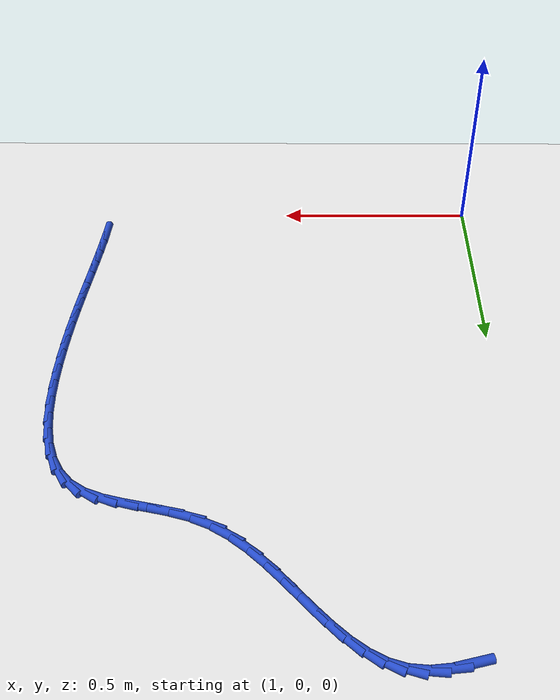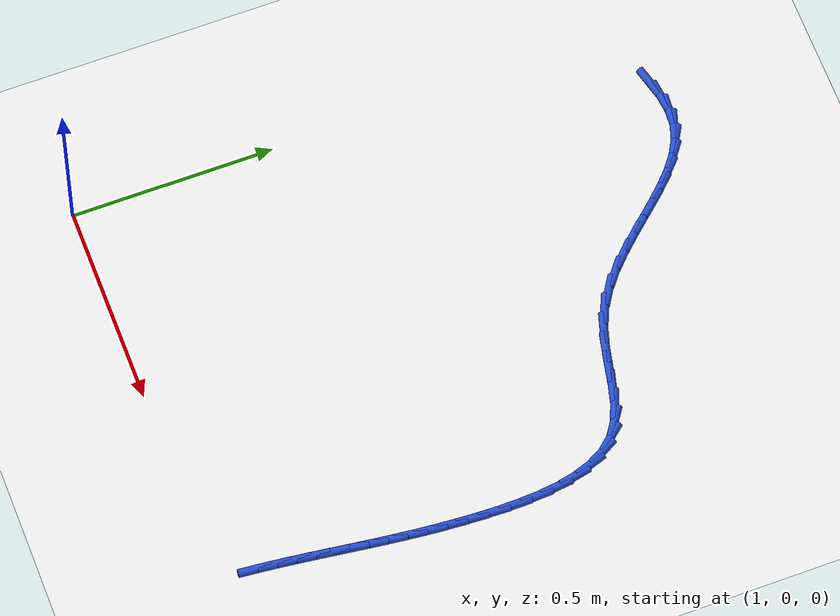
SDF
<sdf version="1.6">
 <world name="default">
  <model name="ground_plane">
   <static>1</static>
   <link name="link">
    <collision name="collision">
     <geometry><plane><normal>0 0 1</normal><size>100 100</size></plane></geometry>
     <surface><friction><ode><mu>100</mu><mu2>50</mu2></ode></friction></surface>
    </collision>
    <visual name="visual">
     <cast_shadows>0</cast_shadows>
     <geometry><plane><normal>0 0 1</normal><size>100 100</size></plane></geometry>
     <material>
      <script><uri>file://media/materials/scripts/gazebo.material</uri><name>Gazebo/WhiteGlow</name></script>
     </material>
    </visual>
   </link>
  </model>
  <model name="line">
   <link name="link_40">
    <pose>1.1506945203903407 1.3999088238449218 0.01 0 1.57 0.248001118957641</pose>
    <collision name="collision">
     <geometry><cylinder><radius>0.01</radius><length>0.08</length></cylinder></geometry>
    </collision>
    <visual name="visual">
     <material>
      <script><name>Gazebo/Blue</name><uri>file://media/materials/scripts/gazebo.material</uri></script>
     </material>
     <geometry><cylinder><radius>0.01</radius><length>0.08</length></cylinder></geometry>
    </visual>
   </link>
   <link name="link_41">
    <pose>1.1947018114395063 1.4110520771290245 0.01 0 1.57 0.10412634017692955</pose>
    <collision name="collision">
     <geometry><cylinder><radius>0.01</radius><length>0.08</length></cylinder></geometry>
    </collision>
    <visual name="visual">
     <material>
      <script><name>Gazebo/Blue</name><uri>file://media/materials/scripts/gazebo.material</uri></script>
     </material>
     <geometry><cylinder><radius>0.01</radius><length>0.08</length></cylinder></geometry>
    </visual>
   </link>
   <link name="link_42">
    <pose>1.2371419881285706 1.415487258182339 0.01 0 1.57 -0.08556642752042813</pose>
    <collision name="collision">
     <geometry><cylinder><radius>0.01</radius><length>0.08</length></cylinder></geometry>
    </collision>
    <visual name="visual">
     <material>
      <script><name>Gazebo/Blue</name><uri>file://media/materials/scripts/gazebo.material</uri></script>
     </material>
     <geometry><cylinder><radius>0.01</radius><length>0.08</length></cylinder></geometry>
    </visual>
   </link>
   <link name="link_43">
    <pose>1.2775255287657954 1.412023324889839 0.01 0 1.57 -0.31185970319608747</pose>
    <collision name="collision">
     <geometry><cylinder><radius>0.01</radius><length>0.08</length></cylinder></geometry>
    </collision>
    <visual name="visual">
     <material>
      <script><name>Gazebo/Blue</name><uri>file://media/materials/scripts/gazebo.material</uri></script>
     </material>
     <geometry><cylinder><radius>0.01</radius><length>0.08</length></cylinder></geometry>
    </visual>
   </link>
   <link name="link_44">
    <pose>1.3154876858018383 1.399785112929304 0.01 0 1.57 -0.5120720492279744</pose>
    <collision name="collision">
     <geometry><cylinder><radius>0.01</radius><length>0.08</length></cylinder></geometry>
    </collision>
    <visual name="visual">
     <material>
      <script><name>Gazebo/Blue</name><uri>file://media/materials/scripts/gazebo.material</uri></script>
     </material>
     <geometry><cylinder><radius>0.01</radius><length>0.08</length></cylinder></geometry>
    </visual>
   </link>
   <link name="link_45">
    <pose>1.351347633939852 1.3796288732174433 0.01 0 1.57 -0.6599936482553092</pose>
    <collision name="collision">
     <geometry><cylinder><radius>0.01</radius><length>0.08</length></cylinder></geometry>
    </collision>
    <visual name="visual">
     <material>
      <script><name>Gazebo/Blue</name><uri>file://media/materials/scripts/gazebo.material</uri></script>
     </material>
     <geometry><cylinder><radius>0.01</radius><length>0.08</length></cylinder></geometry>
    </visual>
   </link>
   <link name="link_46">
    <pose>1.3856576721279887 1.3530010332135192 0.01 0 1.57 -0.7598498416399019</pose>
    <collision name="collision">
     <geometry><cylinder><radius>0.01</radius><length>0.08</length></cylinder></geometry>
    </collision>
    <visual name="visual">
     <material>
      <script><name>Gazebo/Blue</name><uri>file://media/materials/scripts/gazebo.material</uri></script>
     </material>
     <geometry><cylinder><radius>0.01</radius><length>0.08</length></cylinder></geometry>
    </visual>
   </link>
   <link name="link_47">
    <pose>1.4189702967042257 1.3213485200882036 0.01 0 1.57 -0.82007768028849</pose>
    <collision name="collision">
     <geometry><cylinder><radius>0.01</radius><length>0.08</length></cylinder></geometry>
    </collision>
    <visual name="visual">
     <material>
      <script><name>Gazebo/Blue</name><uri>file://media/materials/scripts/gazebo.material</uri></script>
     </material>
     <geometry><cylinder><radius>0.01</radius><length>0.08</length></cylinder></geometry>
    </visual>
   </link>
   <link name="link_48">
    <pose>1.451838004006542 1.2861182610121689 0.01 0 1.57 -0.8476720759975318</pose>
    <collision name="collision">
     <geometry><cylinder><radius>0.01</radius><length>0.08</length></cylinder></geometry>
    </collision>
    <visual name="visual">
     <material>
      <script><name>Gazebo/Blue</name><uri>file://media/materials/scripts/gazebo.material</uri></script>
     </material>
     <geometry><cylinder><radius>0.01</radius><length>0.08</length></cylinder></geometry>
    </visual>
   </link>
   <link name="link_49">
    <pose>1.4848132903729134 1.248757183156087 0.01 0 1.57 -0.8468384163667483</pose>
    <collision name="collision">
     <geometry><cylinder><radius>0.01</radius><length>0.08</length></cylinder></geometry>
    </collision>
    <visual name="visual">
     <material>
      <script><name>Gazebo/Blue</name><uri>file://media/materials/scripts/gazebo.material</uri></script>
     </material>
     <geometry><cylinder><radius>0.01</radius><length>0.08</length></cylinder></geometry>
    </visual>
   </link>
   <link name="link_50">
    <pose>1.518448652141319 1.2107122136906296 0.01 0 1.57 -0.8191300590002366</pose>
    <collision name="collision">
     <geometry><cylinder><radius>0.01</radius><length>0.08</length></cylinder></geometry>
    </collision>
    <visual name="visual">
     <material>
      <script><name>Gazebo/Blue</name><uri>file://media/materials/scripts/gazebo.material</uri></script>
     </material>
     <geometry><cylinder><radius>0.01</radius><length>0.08</length></cylinder></geometry>
    </visual>
   </link>
   <link name="link_51">
    <pose>1.5532965856497365 1.1734302797864689 0.01 0 1.57 -0.7639042151658584</pose>
    <collision name="collision">
     <geometry><cylinder><radius>0.01</radius><length>0.08</length></cylinder></geometry>
    </collision>
    <visual name="visual">
     <material>
      <script><name>Gazebo/Blue</name><uri>file://media/materials/scripts/gazebo.material</uri></script>
     </material>
     <geometry><cylinder><radius>0.01</radius><length>0.08</length></cylinder></geometry>
    </visual>
   </link>
   <link name="link_52">
    <pose>1.5899095872361433 1.1383583086142774 0.01 0 1.57 -0.6789653528277156</pose>
    <collision name="collision">
     <geometry><cylinder><radius>0.01</radius><length>0.08</length></cylinder></geometry>
    </collision>
    <visual name="visual">
     <material>
      <script><name>Gazebo/Blue</name><uri>file://media/materials/scripts/gazebo.material</uri></script>
     </material>
     <geometry><cylinder><radius>0.01</radius><length>0.08</length></cylinder></geometry>
    </visual>
   </link>
   <link name="link_53">
    <pose>1.6288401532385177 1.1069432273447264 0.01 0 1.57 -0.5617905130435357</pose>
    <collision name="collision">
     <geometry><cylinder><radius>0.01</radius><length>0.08</length></cylinder></geometry>
    </collision>
    <visual name="visual">
     <material>
      <script><name>Gazebo/Blue</name><uri>file://media/materials/scripts/gazebo.material</uri></script>
     </material>
     <geometry><cylinder><radius>0.01</radius><length>0.08</length></cylinder></geometry>
    </visual>
   </link>
   <link name="link_54">
    <pose>1.6706407799948368 1.0806319631484886 0.01 0 1.57 -0.41496245748131144</pose>
    <collision name="collision">
     <geometry><cylinder><radius>0.01</radius><length>0.08</length></cylinder></geometry>
    </collision>
    <visual name="visual">
     <material>
      <script><name>Gazebo/Blue</name><uri>file://media/materials/scripts/gazebo.material</uri></script>
     </material>
     <geometry><cylinder><radius>0.01</radius><length>0.08</length></cylinder></geometry>
    </visual>
   </link>
   <link name="link_55">
    <pose>1.7157879506794882 1.0607426528257258 0.01 0 1.57 -0.2897167532969112</pose>
    <collision name="collision">
     <geometry><cylinder><radius>0.01</radius><length>0.08</length></cylinder></geometry>
    </collision>
    <visual name="visual">
     <material>
      <script><name>Gazebo/Blue</name><uri>file://media/materials/scripts/gazebo.material</uri></script>
     </material>
     <geometry><cylinder><radius>0.01</radius><length>0.08</length></cylinder></geometry>
    </visual>
   </link>
   <link name="link_56">
    <pose>1.7635289860777958 1.046510842845819 0.01 0 1.57 -0.2231429391512614</pose>
    <collision name="collision">
     <geometry><cylinder><radius>0.01</radius><length>0.08</length></cylinder></geometry>
    </collision>
    <visual name="visual">
     <material>
      <script><name>Gazebo/Blue</name><uri>file://media/materials/scripts/gazebo.material</uri></script>
     </material>
     <geometry><cylinder><radius>0.01</radius><length>0.08</length></cylinder></geometry>
    </visual>
   </link>
   <link name="link_57">
    <pose>1.8121157415735316 1.0354854460499685 0.01 0 1.57 -0.2132315533554481</pose>
    <collision name="collision">
     <geometry><cylinder><radius>0.01</radius><length>0.08</length></cylinder></geometry>
    </collision>
    <visual name="visual">
     <material>
      <script><name>Gazebo/Blue</name><uri>file://media/materials/scripts/gazebo.material</uri></script>
     </material>
     <geometry><cylinder><radius>0.01</radius><length>0.08</length></cylinder></geometry>
    </visual>
   </link>
   <link name="link_58">
    <pose>1.859771451305368 1.0251668818265693 0.01 0 1.57 -0.26320123160877457</pose>
    <collision name="collision">
     <geometry><cylinder><radius>0.01</radius><length>0.08</length></cylinder></geometry>
    </collision>
    <visual name="visual">
     <material>
      <script><name>Gazebo/Blue</name><uri>file://media/materials/scripts/gazebo.material</uri></script>
     </material>
     <geometry><cylinder><radius>0.01</radius><length>0.08</length></cylinder></geometry>
    </visual>
   </link>
   <link name="link_59">
    <pose>1.9047193494119778 1.0130555695640182 0.01 0 1.57 -0.38514884669716004</pose>
    <collision name="collision">
     <geometry><cylinder><radius>0.01</radius><length>0.08</length></cylinder></geometry>
    </collision>
    <visual name="visual">
     <material>
      <script><name>Gazebo/Blue</name><uri>file://media/materials/scripts/gazebo.material</uri></script>
     </material>
     <geometry><cylinder><radius>0.01</radius><length>0.08</length></cylinder></geometry>
    </visual>
   </link>
   <link name="link_60">
    <pose>1.9451826700320336 0.996651928650711 0.01 0 1.57 -0.5956292241043596</pose>
    <collision name="collision">
     <geometry><cylinder><radius>0.01</radius><length>0.08</length></cylinder></geometry>
    </collision>
    <visual name="visual">
     <material>
      <script><name>Gazebo/Blue</name><uri>file://media/materials/scripts/gazebo.material</uri></script>
     </material>
     <geometry><cylinder><radius>0.01</radius><length>0.08</length></cylinder></geometry>
    </visual>
   </link>
   <link name="link_61">
    <pose>1.979391846290921 0.9734670217352731 0.01 0 1.57 -0.8578289998630426</pose>
    <collision name="collision">
     <geometry><cylinder><radius>0.01</radius><length>0.08</length></cylinder></geometry>
    </collision>
    <visual name="visual">
     <material>
      <script><name>Gazebo/Blue</name><uri>file://media/materials/scripts/gazebo.material</uri></script>
     </material>
     <geometry><cylinder><radius>0.01</radius><length>0.08</length></cylinder></geometry>
    </visual>
   </link>
   <link name="link_62">
    <pose>2.0064017972001515 0.9422308632703268 0.01 0 1.57 -1.0797163538975796</pose>
    <collision name="collision">
     <geometry><cylinder><radius>0.01</radius><length>0.08</length></cylinder></geometry>
    </collision>
    <visual name="visual">
     <material>
      <script><name>Gazebo/Blue</name><uri>file://media/materials/scripts/gazebo.material</uri></script>
     </material>
     <geometry><cylinder><radius>0.01</radius><length>0.08</length></cylinder></geometry>
    </visual>
   </link>
   <link name="link_63">
    <pose>2.026844249015705 0.9040046804891455 0.01 0 1.57 -1.2479436493516618</pose>
    <collision name="collision">
     <geometry><cylinder><radius>0.01</radius><length>0.08</length></cylinder></geometry>
    </collision>
    <visual name="visual">
     <material>
      <script><name>Gazebo/Blue</name><uri>file://media/materials/scripts/gazebo.material</uri></script>
     </material>
     <geometry><cylinder><radius>0.01</radius><length>0.08</length></cylinder></geometry>
    </visual>
   </link>
   <link name="link_64">
    <pose>2.041528724476406 0.8601125618178415 0.01 0 1.57 -1.3716226393590898</pose>
    <collision name="collision">
     <geometry><cylinder><radius>0.01</radius><length>0.08</length></cylinder></geometry>
    </collision>
    <visual name="visual">
     <material>
      <script><name>Gazebo/Blue</name><uri>file://media/materials/scripts/gazebo.material</uri></script>
     </material>
     <geometry><cylinder><radius>0.01</radius><length>0.08</length></cylinder></geometry>
    </visual>
   </link>
   <link name="link_65">
    <pose>2.0512647463210762 0.8118785956825244 0.01 0 1.57 -1.4620195419599558</pose>
    <collision name="collision">
     <geometry><cylinder><radius>0.01</radius><length>0.08</length></cylinder></geometry>
    </collision>
    <visual name="visual">
     <material>
      <script><name>Gazebo/Blue</name><uri>file://media/materials/scripts/gazebo.material</uri></script>
     </material>
     <geometry><cylinder><radius>0.01</radius><length>0.08</length></cylinder></geometry>
    </visual>
   </link>
   <link name="link_66">
    <pose>2.0568618372885377 0.7606268705093041 0.01 0 1.57 -1.5279918928683596</pose>
    <collision name="collision">
     <geometry><cylinder><radius>0.01</radius><length>0.08</length></cylinder></geometry>
    </collision>
    <visual name="visual">
     <material>
      <script><name>Gazebo/Blue</name><uri>file://media/materials/scripts/gazebo.material</uri></script>
     </material>
     <geometry><cylinder><radius>0.01</radius><length>0.08</length></cylinder></geometry>
    </visual>
   </link>
   <link name="link_67">
    <pose>2.059129520117613 0.7076814747242919 0.01 0 1.57 1.5660659358439957</pose>
    <collision name="collision">
     <geometry><cylinder><radius>0.01</radius><length>0.08</length></cylinder></geometry>
    </collision>
    <visual name="visual">
     <material>
      <script><name>Gazebo/Blue</name><uri>file://media/materials/scripts/gazebo.material</uri></script>
     </material>
     <geometry><cylinder><radius>0.01</radius><length>0.08</length></cylinder></geometry>
    </visual>
   </link>
   <link name="link_68">
    <pose>2.058877317547125 0.6543664967535976 0.01 0 1.57 1.5333139351230123</pose>
    <collision name="collision">
     <geometry><cylinder><radius>0.01</radius><length>0.08</length></cylinder></geometry>
    </collision>
    <visual name="visual">
     <material>
      <script><name>Gazebo/Blue</name><uri>file://media/materials/scripts/gazebo.material</uri></script>
     </material>
     <geometry><cylinder><radius>0.01</radius><length>0.08</length></cylinder></geometry>
    </visual>
   </link>
   <link name="link_69">
    <pose>2.0569137056324323 0.6020034494101201 0.01 0 1.57 1.5104250547485023</pose>
    <collision name="collision">
     <geometry><cylinder><radius>0.01</radius><length>0.08</length></cylinder></geometry>
    </collision>
    <visual name="visual">
     <material>
      <script><name>Gazebo/Blue</name><uri>file://media/materials/scripts/gazebo.material</uri></script>
     </material>
     <geometry><cylinder><radius>0.01</radius><length>0.08</length></cylinder></geometry>
    </visual>
   </link>
   <link name="link_70">
    <pose>2.05385790354605 0.5514481340044691 0.01 0 1.57 1.4904682083308844</pose>
    <collision name="collision">
     <geometry><cylinder><radius>0.01</radius><length>0.08</length></cylinder></geometry>
    </collision>
    <visual name="visual">
     <material>
      <script><name>Gazebo/Blue</name><uri>file://media/materials/scripts/gazebo.material</uri></script>
     </material>
     <geometry><cylinder><radius>0.01</radius><length>0.08</length></cylinder></geometry>
    </visual>
   </link>
   <link name="link_71">
    <pose>2.049921876930879 0.5025542078288321 0.01 0 1.57 1.4730819632938281</pose>
    <collision name="collision">
     <geometry><cylinder><radius>0.01</radius><length>0.08</length></cylinder></geometry>
    </collision>
    <visual name="visual">
     <material>
      <script><name>Gazebo/Blue</name><uri>file://media/materials/scripts/gazebo.material</uri></script>
     </material>
     <geometry><cylinder><radius>0.01</radius><length>0.08</length></cylinder></geometry>
    </visual>
   </link>
   <link name="link_72">
    <pose>2.0452647400786237 0.4550452748753876 0.01 0 1.57 1.4587866242409435</pose>
    <collision name="collision">
     <geometry><cylinder><radius>0.01</radius><length>0.08</length></cylinder></geometry>
    </collision>
    <visual name="visual">
     <material>
      <script><name>Gazebo/Blue</name><uri>file://media/materials/scripts/gazebo.material</uri></script>
     </material>
     <geometry><cylinder><radius>0.01</radius><length>0.08</length></cylinder></geometry>
    </visual>
   </link>
   <link name="link_73">
    <pose>2.0400456072809874 0.4086449391363123 0.01 0 1.57 1.4480406597738205</pose>
    <collision name="collision">
     <geometry><cylinder><radius>0.01</radius><length>0.08</length></cylinder></geometry>
    </collision>
    <visual name="visual">
     <material>
      <script><name>Gazebo/Blue</name><uri>file://media/materials/scripts/gazebo.material</uri></script>
     </material>
     <geometry><cylinder><radius>0.01</radius><length>0.08</length></cylinder></geometry>
    </visual>
   </link>
   <link name="link_74">
    <pose>2.0344235928296768 0.36307680460378466 0.01 0 1.57 1.4412115677209945</pose>
    <collision name="collision">
     <geometry><cylinder><radius>0.01</radius><length>0.08</length></cylinder></geometry>
    </collision>
    <visual name="visual">
     <material>
      <script><name>Gazebo/Blue</name><uri>file://media/materials/scripts/gazebo.material</uri></script>
     </material>
     <geometry><cylinder><radius>0.01</radius><length>0.08</length></cylinder></geometry>
    </visual>
   </link>
   <link name="link_75">
    <pose>2.028557811016395 0.31806447526998194 0.01 0 1.57 1.4385513088621793</pose>
    <collision name="collision">
     <geometry><cylinder><radius>0.01</radius><length>0.08</length></cylinder></geometry>
    </collision>
    <visual name="visual">
     <material>
      <script><name>Gazebo/Blue</name><uri>file://media/materials/scripts/gazebo.material</uri></script>
     </material>
     <geometry><cylinder><radius>0.01</radius><length>0.08</length></cylinder></geometry>
    </visual>
   </link>
   <link name="link_76">
    <pose>2.022607376132846 0.27333155512708124 0.01 0 1.57 1.4401785959855262</pose>
    <collision name="collision">
     <geometry><cylinder><radius>0.01</radius><length>0.08</length></cylinder></geometry>
    </collision>
    <visual name="visual">
     <material>
      <script><name>Gazebo/Blue</name><uri>file://media/materials/scripts/gazebo.material</uri></script>
     </material>
     <geometry><cylinder><radius>0.01</radius><length>0.08</length></cylinder></geometry>
    </visual>
   </link>
   <link name="link_77">
    <pose>2.0167314024707355 0.22860164816726108 0.01 0 1.57 1.446069594749611</pose>
    <collision name="collision">
     <geometry><cylinder><radius>0.01</radius><length>0.08</length></cylinder></geometry>
    </collision>
    <visual name="visual">
     <material>
      <script><name>Gazebo/Blue</name><uri>file://media/materials/scripts/gazebo.material</uri></script>
     </material>
     <geometry><cylinder><radius>0.01</radius><length>0.08</length></cylinder></geometry>
    </visual>
   </link>
   <link name="link_78">
    <pose>2.011089001671749 0.18359837450859248 0.01 0 1.57 1.455647827383203</pose>
    <collision name="collision">
     <geometry><cylinder><radius>0.01</radius><length>0.08</length></cylinder></geometry>
    </collision>
    <visual name="visual">
     <material>
      <script><name>Gazebo/Blue</name><uri>file://media/materials/scripts/gazebo.material</uri></script>
     </material>
     <geometry><cylinder><radius>0.01</radius><length>0.08</length></cylinder></geometry>
    </visual>
   </link>
   <link name="link_79">
    <pose>2.0058281619252782 0.13811304273345065 0.01 0 1.57 1.4674138654498543</pose>
    <collision name="collision">
     <geometry><cylinder><radius>0.01</radius><length>0.08</length></cylinder></geometry>
    </collision>
    <visual name="visual">
     <material>
      <script><name>Gazebo/Blue</name><uri>file://media/materials/scripts/gazebo.material</uri></script>
     </material>
     <geometry><cylinder><radius>0.01</radius><length>0.08</length></cylinder></geometry>
    </visual>
   </link>
   <link name="link_80">
    <pose>2.001060345444525 0.09215922940085983 0.01 0 1.57 1.4810781166847422</pose>
    <collision name="collision">
     <geometry><cylinder><radius>0.01</radius><length>0.08</length></cylinder></geometry>
    </collision>
    <visual name="visual">
     <material>
      <script><name>Gazebo/Blue</name><uri>file://media/materials/scripts/gazebo.material</uri></script>
     </material>
     <geometry><cylinder><radius>0.01</radius><length>0.08</length></cylinder></geometry>
    </visual>
   </link>
  </model>
 </world>
</sdf>
